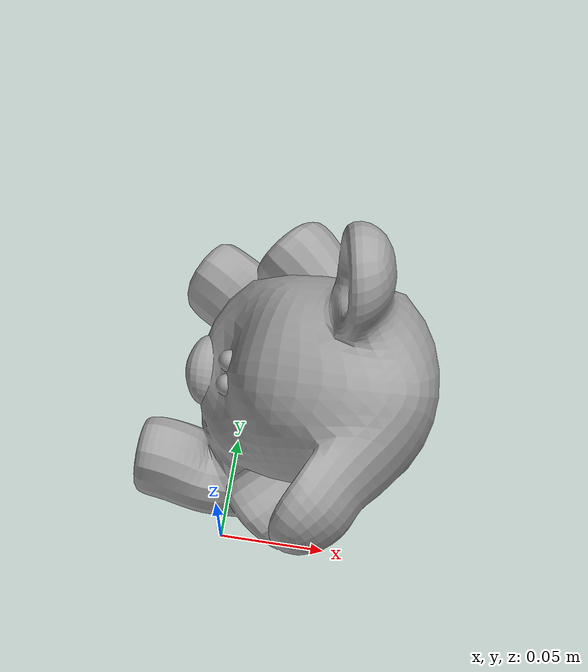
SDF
<?xml version="1.0" ?>
<sdf version="1.4">
  <model name="teddy_bear">
    <pose>0 0 0.1 0 0 0</pose>

    <link name="link">

      <inertial>
        <pose>0 0 0.0 0 0 0</pose>
        <mass>1.0</mass>
        <inertia>
          <ixx>0.00469225</ixx>
          <ixy>0.00469225</ixy><iyy>0.0</iyy>
          <ixz>0.00626477</ixz><iyz>0.0</iyz><izz>0.0</izz>
        </inertia>
      </inertial>

      <collision name="collision">
        <geometry>
          <mesh>
            <uri>model://custom_teddy/meshes/model.dae</uri>
            <scale>0.1 0.1 0.1</scale>
          </mesh>
        </geometry>

        <surface>
          <contact>
            <ode>
              <kp>1000000.0</kp>
              <kd>1.0</kd>
              <max_vel>0.1</max_vel>
              <min_depth>0.001</min_depth>
            </ode>
          </contact>
          <friction>
            <ode>
              <mu>1.0</mu>
              <mu2>1.0</mu2>
              <slip1>0.0</slip1>
              <slip2>0.0</slip2>
            </ode>
          </friction>
        </surface>

      </collision>
      <visual name="visual" cast_shadows="false">
        <geometry>
          <mesh>
            <uri>model://custom_teddy/meshes/model.dae</uri>
            <scale>0.1 0.1 0.1</scale>
          </mesh>
        </geometry>
      </visual>

    </link>
  </model>
</sdf>
